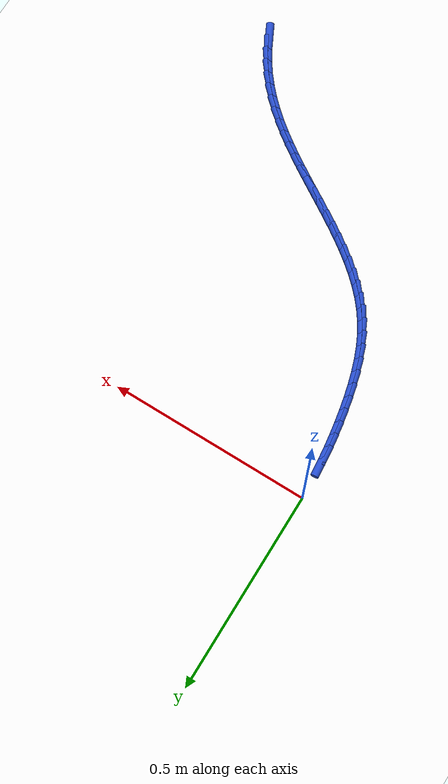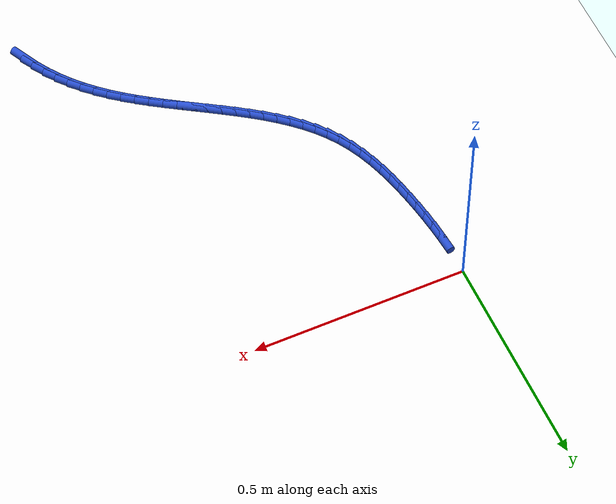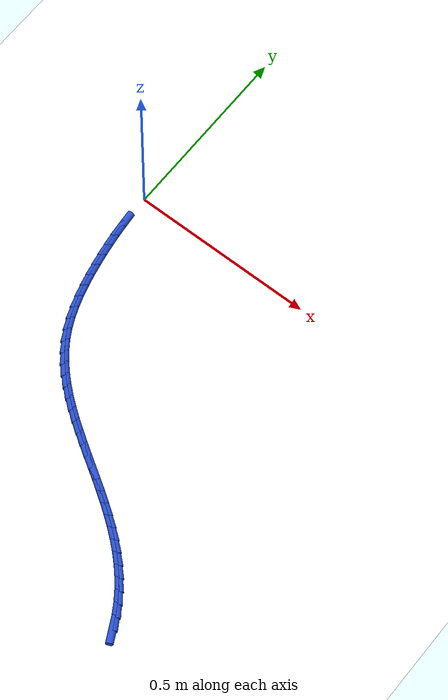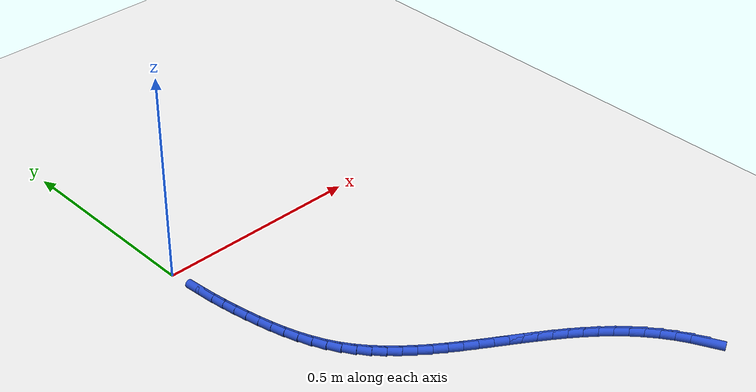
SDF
<sdf version="1.6">
 <world name="default">
  <model name="ground_plane">
   <static>1</static>
   <link name="link">
    <collision name="collision">
     <geometry><plane><normal>0 0 1</normal><size>100 100</size></plane></geometry>
     <surface><friction><ode><mu>100</mu><mu2>50</mu2></ode></friction></surface>
    </collision>
    <visual name="visual">
     <cast_shadows>0</cast_shadows>
     <geometry><plane><normal>0 0 1</normal><size>100 100</size></plane></geometry>
     <material>
      <script><uri>file://media/materials/scripts/gazebo.material</uri><name>Gazebo/WhiteGlow</name></script>
     </material>
    </visual>
   </link>
  </model>
  <model name="line">
   <link name="link_252">
    <pose>0.6606713143792117 -0.9371094377584599 0.01 0 1.57 -1.103781688524031</pose>
    <collision name="collision">
     <geometry><cylinder><radius>0.01</radius><length>0.08</length></cylinder></geometry>
    </collision>
    <visual name="visual">
     <material>
      <script><name>Gazebo/Blue</name><uri>file://media/materials/scripts/gazebo.material</uri></script>
     </material>
     <geometry><cylinder><radius>0.01</radius><length>0.08</length></cylinder></geometry>
    </visual>
   </link>
   <link name="link_253">
    <pose>0.6462440803054499 -0.9084962304550666 0.01 0 1.57 -1.0286873866465176</pose>
    <collision name="collision">
     <geometry><cylinder><radius>0.01</radius><length>0.08</length></cylinder></geometry>
    </collision>
    <visual name="visual">
     <material>
      <script><name>Gazebo/Blue</name><uri>file://media/materials/scripts/gazebo.material</uri></script>
     </material>
     <geometry><cylinder><radius>0.01</radius><length>0.08</length></cylinder></geometry>
    </visual>
   </link>
   <link name="link_254">
    <pose>0.629734520976852 -0.8810853719111132 0.01 0 1.57 -0.9580356769607244</pose>
    <collision name="collision">
     <geometry><cylinder><radius>0.01</radius><length>0.08</length></cylinder></geometry>
    </collision>
    <visual name="visual">
     <material>
      <script><name>Gazebo/Blue</name><uri>file://media/materials/scripts/gazebo.material</uri></script>
     </material>
     <geometry><cylinder><radius>0.01</radius><length>0.08</length></cylinder></geometry>
    </visual>
   </link>
   <link name="link_255">
    <pose>0.6113183911148145 -0.854890227409577 0.01 0 1.57 -0.8918178688933819</pose>
    <collision name="collision">
     <geometry><cylinder><radius>0.01</radius><length>0.08</length></cylinder></geometry>
    </collision>
    <visual name="visual">
     <material>
      <script><name>Gazebo/Blue</name><uri>file://media/materials/scripts/gazebo.material</uri></script>
     </material>
     <geometry><cylinder><radius>0.01</radius><length>0.08</length></cylinder></geometry>
    </visual>
   </link>
   <link name="link_256">
    <pose>0.5911714454407337 -0.8299241622334347 0.01 0 1.57 -0.82987263393278</pose>
    <collision name="collision">
     <geometry><cylinder><radius>0.01</radius><length>0.08</length></cylinder></geometry>
    </collision>
    <visual name="visual">
     <material>
      <script><name>Gazebo/Blue</name><uri>file://media/materials/scripts/gazebo.material</uri></script>
     </material>
     <geometry><cylinder><radius>0.01</radius><length>0.08</length></cylinder></geometry>
    </visual>
   </link>
   <link name="link_257">
    <pose>0.5694694386760064 -0.8062005416656635 0.01 0 1.57 -0.7720589854930718</pose>
    <collision name="collision">
     <geometry><cylinder><radius>0.01</radius><length>0.08</length></cylinder></geometry>
    </collision>
    <visual name="visual">
     <material>
      <script><name>Gazebo/Blue</name><uri>file://media/materials/scripts/gazebo.material</uri></script>
     </material>
     <geometry><cylinder><radius>0.01</radius><length>0.08</length></cylinder></geometry>
    </visual>
   </link>
   <link name="link_258">
    <pose>0.5463882134957028 -0.7837270154622535 0.01 0 1.57 -0.7201687016407059</pose>
    <collision name="collision">
     <geometry><cylinder><radius>0.01</radius><length>0.08</length></cylinder></geometry>
    </collision>
    <visual name="visual">
     <material>
      <script><name>Gazebo/Blue</name><uri>file://media/materials/scripts/gazebo.material</uri></script>
     </material>
     <geometry><cylinder><radius>0.01</radius><length>0.08</length></cylinder></geometry>
    </visual>
   </link>
   <link name="link_259">
    <pose>0.5221049898940265 -0.7624217305265283 0.01 0 1.57 -0.675808943717855</pose>
    <collision name="collision">
     <geometry><cylinder><radius>0.01</radius><length>0.08</length></cylinder></geometry>
    </collision>
    <visual name="visual">
     <material>
      <script><name>Gazebo/Blue</name><uri>file://media/materials/scripts/gazebo.material</uri></script>
     </material>
     <geometry><cylinder><radius>0.01</radius><length>0.08</length></cylinder></geometry>
    </visual>
   </link>
   <link name="link_260">
    <pose>0.496798080366049 -0.7421318393628211 0.01 0 1.57 -0.6389610078332589</pose>
    <collision name="collision">
     <geometry><cylinder><radius>0.01</radius><length>0.08</length></cylinder></geometry>
    </collision>
    <visual name="visual">
     <material>
      <script><name>Gazebo/Blue</name><uri>file://media/materials/scripts/gazebo.material</uri></script>
     </material>
     <geometry><cylinder><radius>0.01</radius><length>0.08</length></cylinder></geometry>
    </visual>
   </link>
   <link name="link_261">
    <pose>0.47064582743675665 -0.722702543030057 0.01 0 1.57 -0.6094742095099404</pose>
    <collision name="collision">
     <geometry><cylinder><radius>0.01</radius><length>0.08</length></cylinder></geometry>
    </collision>
    <visual name="visual">
     <material>
      <script><name>Gazebo/Blue</name><uri>file://media/materials/scripts/gazebo.material</uri></script>
     </material>
     <geometry><cylinder><radius>0.01</radius><length>0.08</length></cylinder></geometry>
    </visual>
   </link>
   <link name="link_262">
    <pose>0.44382657363113603 -0.7039790425871605 0.01 0 1.57 -0.5871713288921301</pose>
    <collision name="collision">
     <geometry><cylinder><radius>0.01</radius><length>0.08</length></cylinder></geometry>
    </collision>
    <visual name="visual">
     <material>
      <script><name>Gazebo/Blue</name><uri>file://media/materials/scripts/gazebo.material</uri></script>
     </material>
     <geometry><cylinder><radius>0.01</radius><length>0.08</length></cylinder></geometry>
    </visual>
   </link>
   <link name="link_263">
    <pose>0.4165186614741739 -0.6858065390930569 0.01 0 1.57 -0.5718940140203528</pose>
    <collision name="collision">
     <geometry><cylinder><radius>0.01</radius><length>0.08</length></cylinder></geometry>
    </collision>
    <visual name="visual">
     <material>
      <script><name>Gazebo/Blue</name><uri>file://media/materials/scripts/gazebo.material</uri></script>
     </material>
     <geometry><cylinder><radius>0.01</radius><length>0.08</length></cylinder></geometry>
    </visual>
   </link>
   <link name="link_264">
    <pose>0.38890043349085673 -0.6680302336066706 0.01 0 1.57 -0.5635342532328155</pose>
    <collision name="collision">
     <geometry><cylinder><radius>0.01</radius><length>0.08</length></cylinder></geometry>
    </collision>
    <visual name="visual">
     <material>
      <script><name>Gazebo/Blue</name><uri>file://media/materials/scripts/gazebo.material</uri></script>
     </material>
     <geometry><cylinder><radius>0.01</radius><length>0.08</length></cylinder></geometry>
    </visual>
   </link>
   <link name="link_265">
    <pose>0.3611502322061719 -0.6504953271869269 0.01 0 1.57 -0.5620547439702588</pose>
    <collision name="collision">
     <geometry><cylinder><radius>0.01</radius><length>0.08</length></cylinder></geometry>
    </collision>
    <visual name="visual">
     <material>
      <script><name>Gazebo/Blue</name><uri>file://media/materials/scripts/gazebo.material</uri></script>
     </material>
     <geometry><cylinder><radius>0.01</radius><length>0.08</length></cylinder></geometry>
    </visual>
   </link>
   <link name="link_266">
    <pose>0.3334464001451041 -0.6330470208927498 0.01 0 1.57 -0.5675005163257886</pose>
    <collision name="collision">
     <geometry><cylinder><radius>0.01</radius><length>0.08</length></cylinder></geometry>
    </collision>
    <visual name="visual">
     <material>
      <script><name>Gazebo/Blue</name><uri>file://media/materials/scripts/gazebo.material</uri></script>
     </material>
     <geometry><cylinder><radius>0.01</radius><length>0.08</length></cylinder></geometry>
    </visual>
   </link>
   <link name="link_267">
    <pose>0.30596727983264116 -0.6155305157830645 0.01 0 1.57 -0.5800030668174737</pose>
    <collision name="collision">
     <geometry><cylinder><radius>0.01</radius><length>0.08</length></cylinder></geometry>
    </collision>
    <visual name="visual">
     <material>
      <script><name>Gazebo/Blue</name><uri>file://media/materials/scripts/gazebo.material</uri></script>
     </material>
     <geometry><cylinder><radius>0.01</radius><length>0.08</length></cylinder></geometry>
    </visual>
   </link>
   <link name="link_268">
    <pose>0.2788912137937693 -0.5977910129167956 0.01 0 1.57 -0.5997768314154883</pose>
    <collision name="collision">
     <geometry><cylinder><radius>0.01</radius><length>0.08</length></cylinder></geometry>
    </collision>
    <visual name="visual">
     <material>
      <script><name>Gazebo/Blue</name><uri>file://media/materials/scripts/gazebo.material</uri></script>
     </material>
     <geometry><cylinder><radius>0.01</radius><length>0.08</length></cylinder></geometry>
    </visual>
   </link>
   <link name="link_269">
    <pose>0.25239654455347527 -0.5796737133528683 0.01 0 1.57 -0.6271062112826263</pose>
    <collision name="collision">
     <geometry><cylinder><radius>0.01</radius><length>0.08</length></cylinder></geometry>
    </collision>
    <visual name="visual">
     <material>
      <script><name>Gazebo/Blue</name><uri>file://media/materials/scripts/gazebo.material</uri></script>
     </material>
     <geometry><cylinder><radius>0.01</radius><length>0.08</length></cylinder></geometry>
    </visual>
   </link>
   <link name="link_270">
    <pose>0.22666161463674556 -0.5610238181502073 0.01 0 1.57 -0.662319681051828</pose>
    <collision name="collision">
     <geometry><cylinder><radius>0.01</radius><length>0.08</length></cylinder></geometry>
    </collision>
    <visual name="visual">
     <material>
      <script><name>Gazebo/Blue</name><uri>file://media/materials/scripts/gazebo.material</uri></script>
     </material>
     <geometry><cylinder><radius>0.01</radius><length>0.08</length></cylinder></geometry>
    </visual>
   </link>
   <link name="link_271">
    <pose>0.20186476656856683 -0.5416865283677372 0.01 0 1.57 -0.7057460701100193</pose>
    <collision name="collision">
     <geometry><cylinder><radius>0.01</radius><length>0.08</length></cylinder></geometry>
    </collision>
    <visual name="visual">
     <material>
      <script><name>Gazebo/Blue</name><uri>file://media/materials/scripts/gazebo.material</uri></script>
     </material>
     <geometry><cylinder><radius>0.01</radius><length>0.08</length></cylinder></geometry>
    </visual>
   </link>
   <link name="link_272">
    <pose>0.17818434287392562 -0.5215070450643831 0.01 0 1.57 -0.7576476711437734</pose>
    <collision name="collision">
     <geometry><cylinder><radius>0.01</radius><length>0.08</length></cylinder></geometry>
    </collision>
    <visual name="visual">
     <material>
      <script><name>Gazebo/Blue</name><uri>file://media/materials/scripts/gazebo.material</uri></script>
     </material>
     <geometry><cylinder><radius>0.01</radius><length>0.08</length></cylinder></geometry>
    </visual>
   </link>
   <link name="link_273">
    <pose>0.15579868607780842 -0.5003305692990695 0.01 0 1.57 -0.8181268315433562</pose>
    <collision name="collision">
     <geometry><cylinder><radius>0.01</radius><length>0.08</length></cylinder></geometry>
    </collision>
    <visual name="visual">
     <material>
      <script><name>Gazebo/Blue</name><uri>file://media/materials/scripts/gazebo.material</uri></script>
     </material>
     <geometry><cylinder><radius>0.01</radius><length>0.08</length></cylinder></geometry>
    </visual>
   </link>
   <link name="link_274">
    <pose>0.13488613870520189 -0.47800230213072126 0.01 0 1.57 -0.8870091242805596</pose>
    <collision name="collision">
     <geometry><cylinder><radius>0.01</radius><length>0.08</length></cylinder></geometry>
    </collision>
    <visual name="visual">
     <material>
      <script><name>Gazebo/Blue</name><uri>file://media/materials/scripts/gazebo.material</uri></script>
     </material>
     <geometry><cylinder><radius>0.01</radius><length>0.08</length></cylinder></geometry>
    </visual>
   </link>
   <link name="link_275">
    <pose>0.11562504328109256 -0.4543674446182635 0.01 0 1.57 -0.9637185641749494</pose>
    <collision name="collision">
     <geometry><cylinder><radius>0.01</radius><length>0.08</length></cylinder></geometry>
    </collision>
    <visual name="visual">
     <material>
      <script><name>Gazebo/Blue</name><uri>file://media/materials/scripts/gazebo.material</uri></script>
     </material>
     <geometry><cylinder><radius>0.01</radius><length>0.08</length></cylinder></geometry>
    </visual>
   </link>
   <link name="link_276">
    <pose>0.098193742330467 -0.42927119782062056 0.01 0 1.57 -1.046417294803861</pose>
    <collision name="collision">
     <geometry><cylinder><radius>0.01</radius><length>0.08</length></cylinder></geometry>
    </collision>
    <visual name="visual">
     <material>
      <script><name>Gazebo/Blue</name><uri>file://media/materials/scripts/gazebo.material</uri></script>
     </material>
     <geometry><cylinder><radius>0.01</radius><length>0.08</length></cylinder></geometry>
    </visual>
   </link>
   <link name="link_277">
    <pose>0.0827544245208017 -0.40257763642205024 0.01 0 1.57 -1.1243771076024536</pose>
    <collision name="collision">
     <geometry><cylinder><radius>0.01</radius><length>0.08</length></cylinder></geometry>
    </collision>
    <visual name="visual">
     <material>
      <script><name>Gazebo/Blue</name><uri>file://media/materials/scripts/gazebo.material</uri></script>
     </material>
     <geometry><cylinder><radius>0.01</radius><length>0.08</length></cylinder></geometry>
    </visual>
   </link>
   <link name="link_278">
    <pose>0.06926325526328968 -0.3743915457696647 0.01 0 1.57 -1.1912910084912878</pose>
    <collision name="collision">
     <geometry><cylinder><radius>0.01</radius><length>0.08</length></cylinder></geometry>
    </collision>
    <visual name="visual">
     <material>
      <script><name>Gazebo/Blue</name><uri>file://media/materials/scripts/gazebo.material</uri></script>
     </material>
     <geometry><cylinder><radius>0.01</radius><length>0.08</length></cylinder></geometry>
    </visual>
   </link>
   <link name="link_279">
    <pose>0.05753427741874292 -0.34498376243181145 0.01 0 1.57 -1.2479457990307583</pose>
    <collision name="collision">
     <geometry><cylinder><radius>0.01</radius><length>0.08</length></cylinder></geometry>
    </collision>
    <visual name="visual">
     <material>
      <script><name>Gazebo/Blue</name><uri>file://media/materials/scripts/gazebo.material</uri></script>
     </material>
     <geometry><cylinder><radius>0.01</radius><length>0.08</length></cylinder></geometry>
    </visual>
   </link>
   <link name="link_280">
    <pose>0.047378715033343996 -0.3146284163853128 0.01 0 1.57 -1.2953129170980546</pose>
    <collision name="collision">
     <geometry><cylinder><radius>0.01</radius><length>0.08</length></cylinder></geometry>
    </collision>
    <visual name="visual">
     <material>
      <script><name>Gazebo/Blue</name><uri>file://media/materials/scripts/gazebo.material</uri></script>
     </material>
     <geometry><cylinder><radius>0.01</radius><length>0.08</length></cylinder></geometry>
    </visual>
   </link>
   <link name="link_281">
    <pose>0.03860779215327459 -0.28359963760698814 0.01 0 1.57 -1.3342792093576303</pose>
    <collision name="collision">
     <geometry><cylinder><radius>0.01</radius><length>0.08</length></cylinder></geometry>
    </collision>
    <visual name="visual">
     <material>
      <script><name>Gazebo/Blue</name><uri>file://media/materials/scripts/gazebo.material</uri></script>
     </material>
     <geometry><cylinder><radius>0.01</radius><length>0.08</length></cylinder></geometry>
    </visual>
   </link>
   <link name="link_282">
    <pose>0.031032732824717274 -0.25217155607365954 0.01 0 1.57 -1.365571734906294</pose>
    <collision name="collision">
     <geometry><cylinder><radius>0.01</radius><length>0.08</length></cylinder></geometry>
    </collision>
    <visual name="visual">
     <material>
      <script><name>Gazebo/Blue</name><uri>file://media/materials/scripts/gazebo.material</uri></script>
     </material>
     <geometry><cylinder><radius>0.01</radius><length>0.08</length></cylinder></geometry>
    </visual>
   </link>
   <link name="link_283">
    <pose>0.024464761093854346 -0.2206183017621483 0.01 0 1.57 -1.3903976807565817</pose>
    <collision name="collision">
     <geometry><cylinder><radius>0.01</radius><length>0.08</length></cylinder></geometry>
    </collision>
    <visual name="visual">
     <material>
      <script><name>Gazebo/Blue</name><uri>file://media/materials/scripts/gazebo.material</uri></script>
     </material>
     <geometry><cylinder><radius>0.01</radius><length>0.08</length></cylinder></geometry>
    </visual>
   </link>
   <link name="link_284">
    <pose>0.018731078380693916 -0.18918043284421648 0.01 0 1.57 -1.4136544019269568</pose>
    <collision name="collision">
     <geometry><cylinder><radius>0.01</radius><length>0.08</length></cylinder></geometry>
    </collision>
    <visual name="visual">
     <material>
      <script><name>Gazebo/Blue</name><uri>file://media/materials/scripts/gazebo.material</uri></script>
     </material>
     <geometry><cylinder><radius>0.01</radius><length>0.08</length></cylinder></geometry>
    </visual>
   </link>
   <link name="link_285">
    <pose>0.013769404917254648 -0.15786628434578054 0.01 0 1.57 -1.437160680460621</pose>
    <collision name="collision">
     <geometry><cylinder><radius>0.01</radius><length>0.08</length></cylinder></geometry>
    </collision>
    <visual name="visual">
     <material>
      <script><name>Gazebo/Blue</name><uri>file://media/materials/scripts/gazebo.material</uri></script>
     </material>
     <geometry><cylinder><radius>0.01</radius><length>0.08</length></cylinder></geometry>
    </visual>
   </link>
   <link name="link_286">
    <pose>0.00956418343022442 -0.1265860175565714 0.01 0 1.57 -1.460696491975641</pose>
    <collision name="collision">
     <geometry><cylinder><radius>0.01</radius><length>0.08</length></cylinder></geometry>
    </collision>
    <visual name="visual">
     <material>
      <script><name>Gazebo/Blue</name><uri>file://media/materials/scripts/gazebo.material</uri></script>
     </material>
     <geometry><cylinder><radius>0.01</radius><length>0.08</length></cylinder></geometry>
    </visual>
   </link>
   <link name="link_287">
    <pose>0.006100023057293533 -0.09524944410198892 0.01 0 1.57 -1.4840317598794293</pose>
    <collision name="collision">
     <geometry><cylinder><radius>0.01</radius><length>0.08</length></cylinder></geometry>
    </collision>
    <visual name="visual">
     <material>
      <script><name>Gazebo/Blue</name><uri>file://media/materials/scripts/gazebo.material</uri></script>
     </material>
     <geometry><cylinder><radius>0.01</radius><length>0.08</length></cylinder></geometry>
    </visual>
   </link>
  </model>
 </world>
</sdf>
